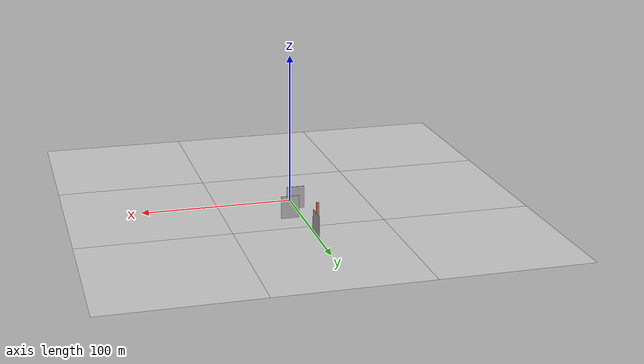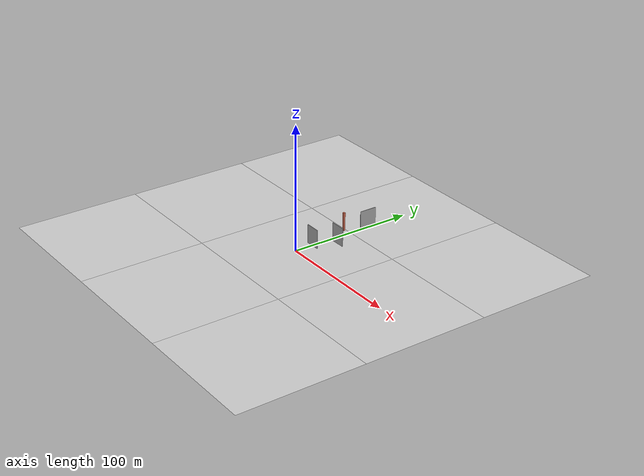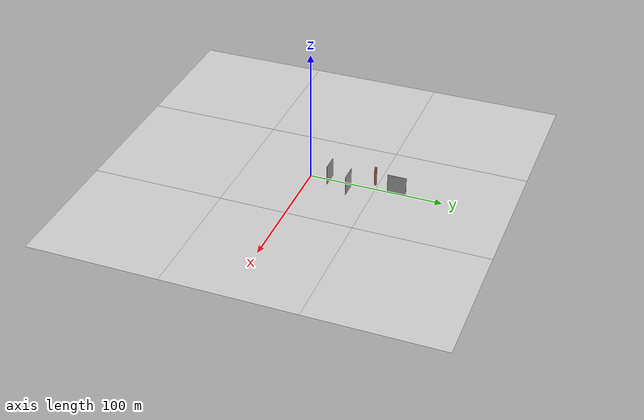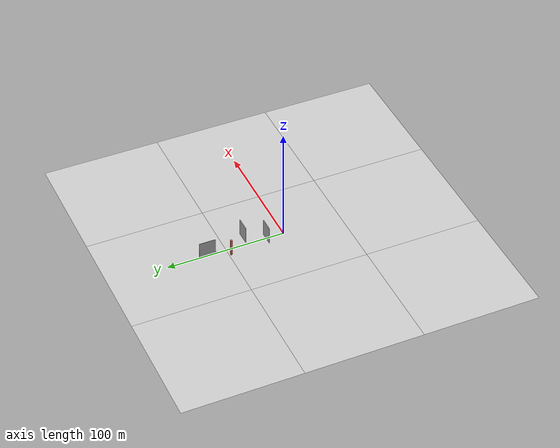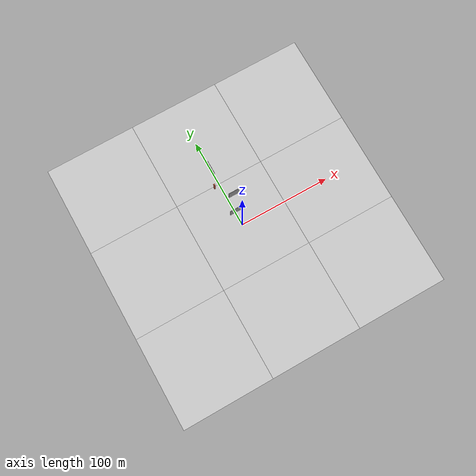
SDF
<?xml version="1.0" encoding="UTF-8"?>
<sdf version="1.9">
  <world name="default">

    <physics type="ode">
      <max_step_size>0.004</max_step_size>
      <real_time_factor>1.0</real_time_factor>
      <real_time_update_rate>250</real_time_update_rate>
    </physics>
    <gravity>0 0 -9.8</gravity>
    <magnetic_field>2.64e-05 -4.11e-07 3.50e-05</magnetic_field>  <!-- Default: Sevilla, Spain (WMM2020) -->
    <atmosphere type="adiabatic"/>

    <scene>
      <sky>
        <clouds>
          <speed>12</speed>
        </clouds>
      </sky>
      <grid>false</grid>
      <ambient>0.5 0.5 0.5 0.3</ambient>
      <background>0.3 0.3 0.3 0.3</background>
      <shadows>false</shadows>
      <enable_instancing>true</enable_instancing>
    </scene>

    <light name="sunUTC" type="directional">
      <pose>0 0 500 0 -0 0</pose>
      <cast_shadows>true</cast_shadows>
      <intensity>1</intensity>
      <direction>0.001 0.625 -0.78</direction>
      <diffuse>0.904 0.904 0.904 1</diffuse>
      <specular>0.271 0.271 0.271 1</specular>
      <attenuation>
        <range>2000</range>
        <linear>0</linear>
        <constant>1</constant>
        <quadratic>0</quadratic>
      </attenuation>
      <spot>
        <inner_angle>0</inner_angle>
        <outer_angle>0</outer_angle>
        <falloff>0</falloff>
      </spot>
    </light>
    <light type="directional" name="sun_2">
      <cast_shadows>true</cast_shadows>
      <pose>200 200 200 0 0 0</pose>
      <diffuse>0.5 0.5 0.5 0.3</diffuse>
      <specular>0.2 0.2 0.2 0.3</specular>
      <attenuation>
        <range>2000</range>
        <constant>1</constant>
        <linear>0</linear>
        <quadratic>0</quadratic>
      </attenuation>
      <direction>0.01 0.01 -0.9</direction>
    </light>
    <spherical_coordinates>
      <surface_model>EARTH_WGS84</surface_model>
      <world_frame_orientation>ENU</world_frame_orientation>
      <latitude_deg>$(latitude)</latitude_deg>
      <longitude_deg>$(longitude)</longitude_deg>
      <elevation>$(elevation)</elevation>
    </spherical_coordinates>

    <include>
      <uri>model://ground_grass</uri>
    </include>

    <!-- Obstacle arena: walls taller than the mission altitude, to exercise sidestep avoidance. -->
    <model name="wall_1">
      <static>true</static>
      <pose>0 15 7.5 0 0 0.0</pose>
      <link name="link">
        <collision name="collision">
          <geometry><box><size>12 0.5 15.0</size></box></geometry>
        </collision>
        <visual name="visual">
          <geometry><box><size>12 0.5 15.0</size></box></geometry>
          <material>
            <ambient>0.65 0.65 0.65 1</ambient>
            <diffuse>0.65 0.65 0.65 1</diffuse>
          </material>
        </visual>
      </link>
    </model>
    <model name="wall_2">
      <static>true</static>
      <pose>8 32 7.5 0 0 0.0</pose>
      <link name="link">
        <collision name="collision">
          <geometry><box><size>12 0.5 15.0</size></box></geometry>
        </collision>
        <visual name="visual">
          <geometry><box><size>12 0.5 15.0</size></box></geometry>
          <material>
            <ambient>0.65 0.65 0.65 1</ambient>
            <diffuse>0.65 0.65 0.65 1</diffuse>
          </material>
        </visual>
      </link>
    </model>
    <model name="pillar_1">
      <static>true</static>
      <pose>-6 48 7.5 0 0 0.0</pose>
      <link name="link">
        <collision name="collision">
          <geometry><box><size>1.5 1.5 15.0</size></box></geometry>
        </collision>
        <visual name="visual">
          <geometry><box><size>1.5 1.5 15.0</size></box></geometry>
          <material>
            <ambient>0.8 0.4 0.3 1</ambient>
            <diffuse>0.8 0.4 0.3 1</diffuse>
          </material>
        </visual>
      </link>
    </model>
    <model name="wall_3">
      <static>true</static>
      <pose>0 66 7.5 0 0 0.0</pose>
      <link name="link">
        <collision name="collision">
          <geometry><box><size>0.5 14 15.0</size></box></geometry>
        </collision>
        <visual name="visual">
          <geometry><box><size>0.5 14 15.0</size></box></geometry>
          <material>
            <ambient>0.65 0.65 0.65 1</ambient>
            <diffuse>0.65 0.65 0.65 1</diffuse>
          </material>
        </visual>
      </link>
    </model>

  </world>
</sdf>

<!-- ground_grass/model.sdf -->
<sdf version='1.6'>
  <model name="ground_grass">
    <include>
      <name>grass_1</name>
      <uri>model://grass_floor_textured</uri>
      <pose>0 0 0 0 0 0</pose>
    </include>
    <include>
      <name>grass_2</name>
      <uri>model://grass_floor_textured</uri>
      <pose>0 100 0 0 0 0</pose>
    </include>
    <include>
      <name>grass_3</name>
      <uri>model://grass_floor_textured</uri>
      <pose>0 -100 0 0 0 0</pose>
    </include>
    <include>
      <name>grass_4</name>
      <uri>model://grass_floor_textured</uri>
      <pose>-100 0 0 0 0 0</pose>
    </include>

    <include>
      <name>grass_5</name>
      <uri>model://grass_floor_textured</uri>
      <pose>-100 100 0 0 0 0</pose>
    </include>
    <include>
      <name>grass_6</name>
      <uri>model://grass_floor_textured</uri>
      <pose>-100 -100 0 0 0 0</pose>
    </include>
    <include>
      <name>grass_7</name>
      <uri>model://grass_floor_textured</uri>
      <pose>100 0 0 0 0 0</pose>
    </include>
    <include>
      <name>grass_8</name>
      <uri>model://grass_floor_textured</uri>
      <pose>100 -100 0 0 0 0</pose>
    </include>
    <include>
      <name>grass_9</name>
      <uri>model://grass_floor_textured</uri>
      <pose>100 100 0 0 0 0</pose>
    </include>
  </model>
</sdf>

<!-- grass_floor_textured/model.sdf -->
<sdf version="1.9">
  <model name="grass_floor_textured">
    <static>true</static>
    <link name="link">
      <collision name="collision">
        <geometry>
          <plane>
            <normal>0 0 1</normal>
            <size>100 100</size>
          </plane>
        </geometry>
      </collision>
      <visual name="visual">
        <geometry>
          <mesh>
            <uri>model://grass_floor_textured/materials/plane_tiled.dae</uri>
          </mesh>
        </geometry>
        <material>
          <ambient>0.8 0.8 0.8 1</ambient>
          <diffuse>0.8 0.8 0.8 1</diffuse>
          <specular>0.1 0.1 0.1 1</specular>
          <pbr>
            <metal>
              <albedo_map>materials/grass.jpg</albedo_map>
              <metalness>0.0</metalness>
              <roughness>0.8</roughness>
            </metal>
          </pbr>
        </material>
      </visual>
    </link>
  </model>
</sdf>
